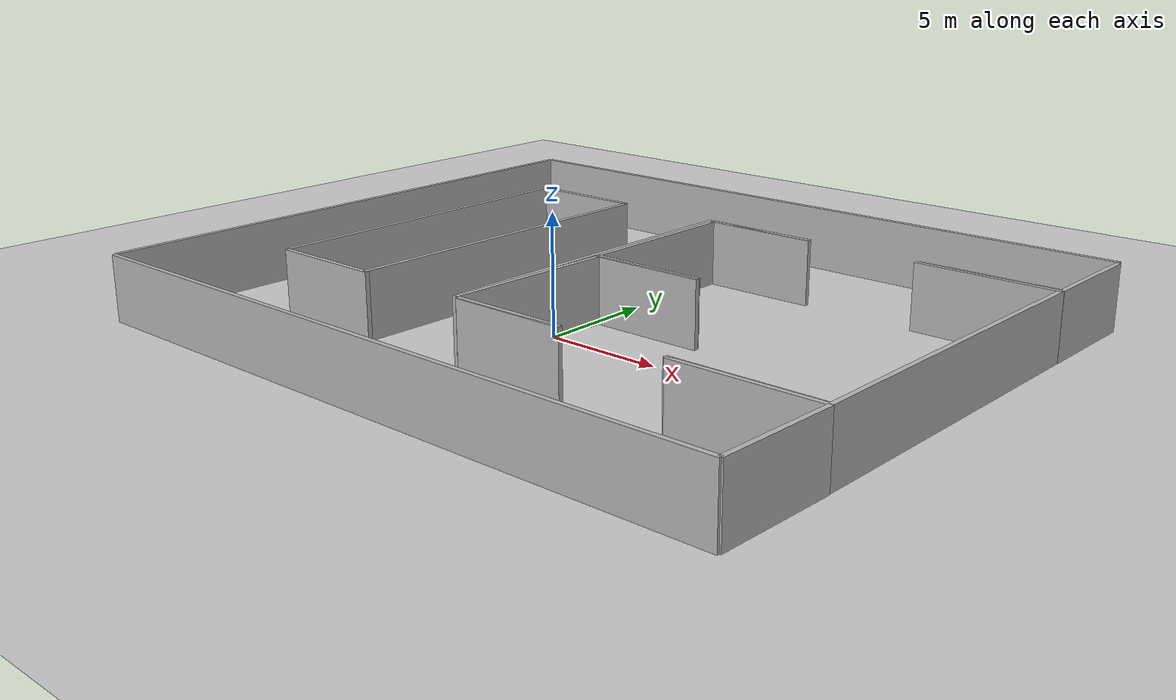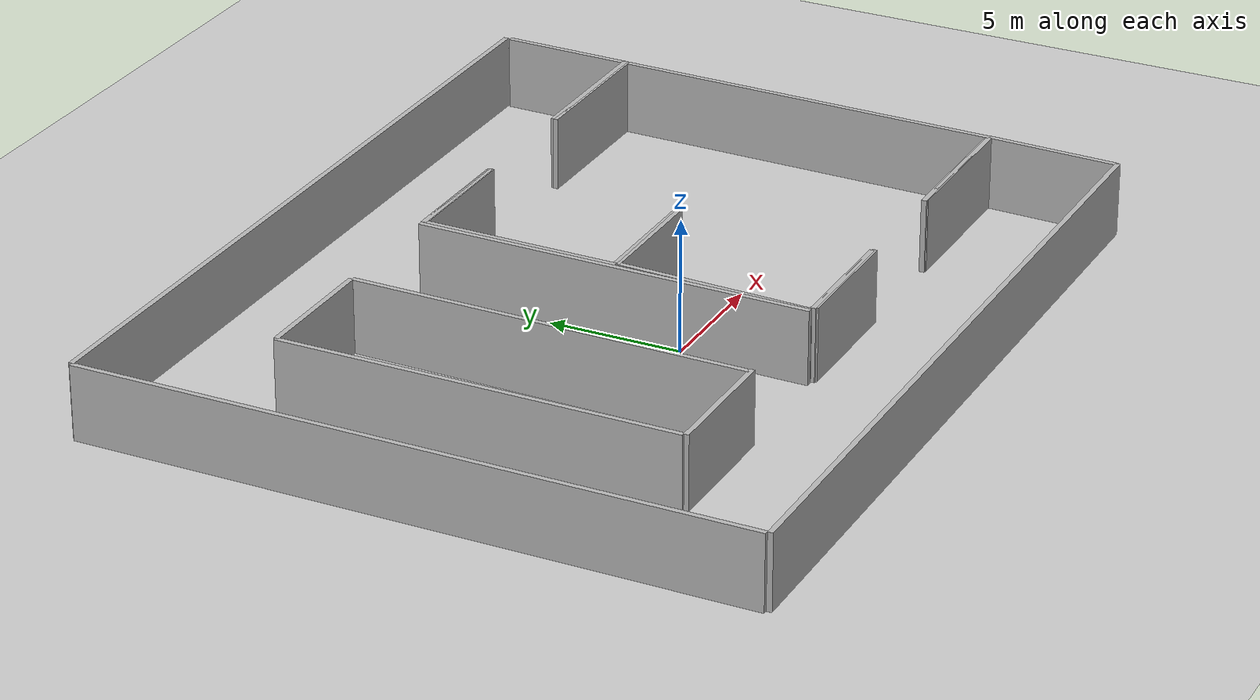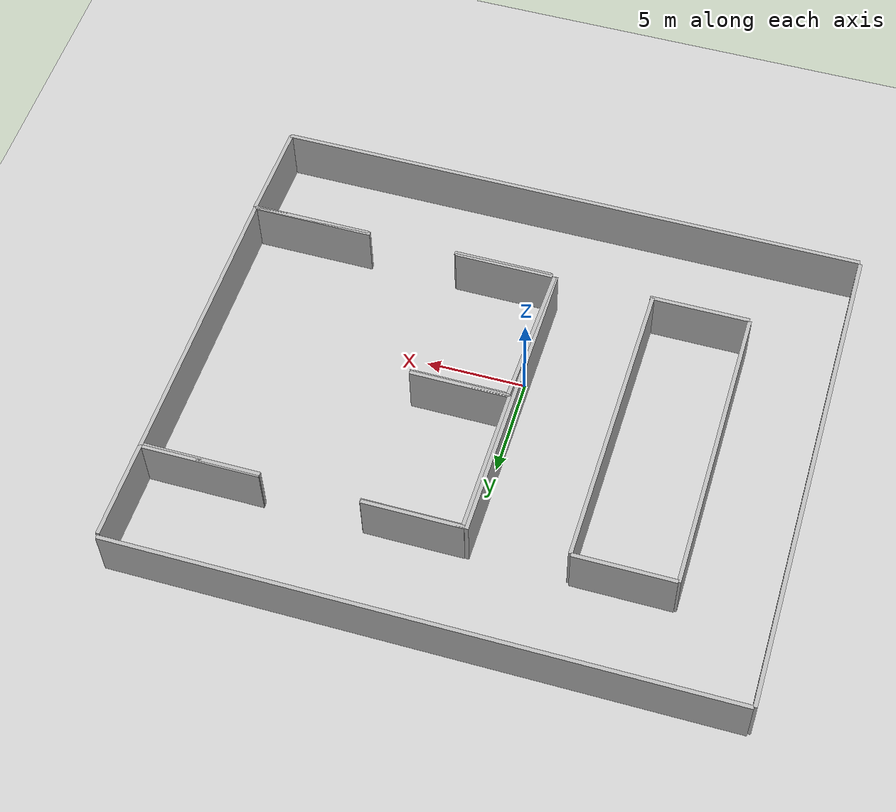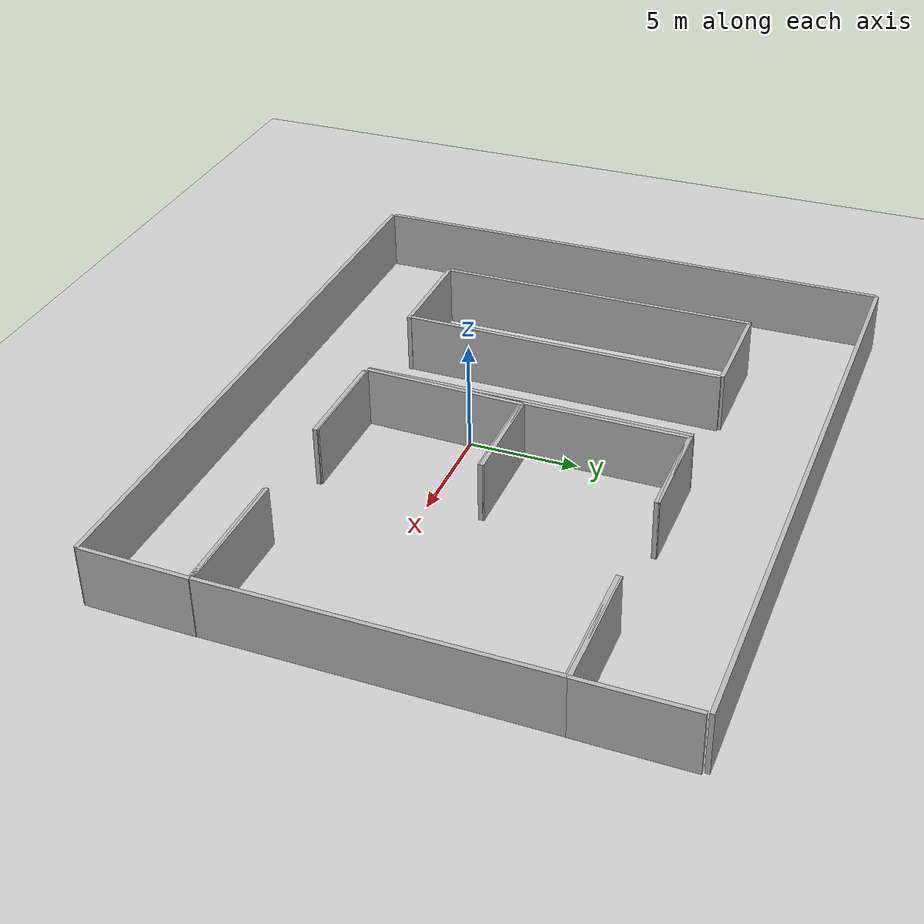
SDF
<sdf version="1.4">
 <world name="default">
  <light name="sun" type="directional">
   <pose>0 0 10 0 -0 0</pose>
   <diffuse>0.8 0.8 0.8 1</diffuse>
   <specular>0.2 0.2 0.2 1</specular>
   <attenuation>
    <range>1000</range>
    <constant>0.9</constant>
    <linear>0.01</linear>
    <quadratic>0.001</quadratic>
   </attenuation>
   <direction>-0.5 0.1 -0.9</direction>
  </light>
  <model name="ground_plane">
   <static>1</static>
   <link name="link">
    <collision name="collision">
     <geometry><plane><normal>0 0 1</normal><size>100 100</size></plane></geometry>
     <surface><friction><ode><mu>100</mu><mu2>50</mu2></ode></friction></surface>
    </collision>
    <visual name="visual">
     <cast_shadows>0</cast_shadows>
     <geometry><plane><normal>0 0 1</normal><size>100 100</size></plane></geometry>
     <material>
      <script><uri>file://media/materials/scripts/gazebo.material</uri><name>Gazebo/Grey</name></script>
     </material>
    </visual>
    <velocity_decay><linear>0</linear><angular>0</angular></velocity_decay>
   </link>
  </model>
  <physics type="ode">
   <max_step_size>0.001</max_step_size>
   <real_time_factor>1</real_time_factor>
   <real_time_update_rate>1000</real_time_update_rate>
   <gravity>0 0 -9.8</gravity>
  </physics>
  <scene><ambient>0.4 0.4 0.4 1</ambient><background>0.7 0.7 0.7 1</background><shadows>1</shadows></scene>
  <spherical_coordinates>
   <surface_model>EARTH_WGS84</surface_model>
   <latitude_deg>0</latitude_deg>
   <longitude_deg>0</longitude_deg>
   <elevation>0</elevation>
   <heading_deg>0</heading_deg>
  </spherical_coordinates>
  <model name="lab">
   <static>1</static>
   <link name="link">
    <pose>0 0 1.4 0 -0 0</pose>
    <collision name="collision"><geometry><box><size>30 0.2 2.8</size></box></geometry></collision>
    <visual name="visual">
     <cast_shadows>0</cast_shadows>
     <geometry><box><size>30 0.2 2.8</size></box></geometry>
     <material>
      <script>
       <uri>model://lab/materials/scripts</uri>
       <uri>model://lab/materials/textures</uri>
       <name>vrc/lab_wall1</name>
      </script>
     </material>
    </visual>
    <velocity_decay><linear>0</linear><angular>0</angular></velocity_decay>
   </link>
   <pose>0.475264 -10 0 0 -0 0</pose>
  </model>
  <model name="lab_0">
   <static>1</static>
   <link name="link">
    <pose>0 0 1.4 0 -0 0</pose>
    <collision name="collision"><geometry><box><size>5 0.2 2.8</size></box></geometry></collision>
    <visual name="visual">
     <cast_shadows>0</cast_shadows>
     <geometry><box><size>5 0.2 2.8</size></box></geometry>
     <material>
      <script>
       <uri>model://lab/materials/scripts</uri>
       <uri>model://lab/materials/textures</uri>
       <name>vrc/lab_wall2</name>
      </script>
     </material>
    </visual>
    <velocity_decay><linear>0</linear><angular>0</angular></velocity_decay>
   </link>
   <pose>15.5383 -7.50469 0 0 -0 1.53305</pose>
  </model>
  <model name="lab_1">
   <static>1</static>
   <link name="link">
    <pose>0 0 1.4 0 -0 0</pose>
    <collision name="collision"><geometry><box><size>15 0.2 2.8</size></box></geometry></collision>
    <visual name="visual">
     <cast_shadows>0</cast_shadows>
     <geometry><box><size>15 0.2 2.8</size></box></geometry>
     <material>
      <script>
       <uri>model://lab/materials/scripts</uri>
       <uri>model://lab/materials/textures</uri>
       <name>vrc/lab_wall3</name>
      </script>
     </material>
    </visual>
    <velocity_decay><linear>0</linear><angular>0</angular></velocity_decay>
   </link>
   <pose>15.7626 2.51113 0 0 -0 1.55062</pose>
  </model>
  <model name="lab_2">
   <static>1</static>
   <link name="link">
    <pose>0 0 1.4 0 -0 0</pose>
    <collision name="collision"><geometry><box><size>5 0.2 2.8</size></box></geometry></collision>
    <visual name="visual">
     <cast_shadows>0</cast_shadows>
     <geometry><box><size>5 0.2 2.8</size></box></geometry>
     <material>
      <script>
       <uri>model://lab/materials/scripts</uri>
       <uri>model://lab/materials/textures</uri>
       <name>vrc/lab_wall4</name>
      </script>
     </material>
    </visual>
    <velocity_decay><linear>0</linear><angular>0</angular></velocity_decay>
   </link>
   <pose>15.9764 12.4537 0 0 -0 1.54953</pose>
  </model>
  <model name="lab_4">
   <static>1</static>
   <link name="link">
    <pose>0 0 1.4 0 -0 0</pose>
    <collision name="collision"><geometry><box><size>25 0.2 2.8</size></box></geometry></collision>
    <visual name="visual">
     <cast_shadows>0</cast_shadows>
     <geometry><box><size>25 0.2 2.8</size></box></geometry>
     <material>
      <script>
       <uri>model://lab/materials/scripts</uri>
       <uri>model://lab/materials/textures</uri>
       <name>vrc/lab_wall7</name>
      </script>
     </material>
    </visual>
    <velocity_decay><linear>0</linear><angular>0</angular></velocity_decay>
   </link>
   <pose>-14.5466 2.602 0 0 0 -1.57249</pose>
  </model>
  <model name="lab_5">
   <static>1</static>
   <link name="link">
    <pose>0 0 1.4 0 -0 0</pose>
    <collision name="collision"><geometry><box><size>30.5 0.2 2.8</size></box></geometry></collision>
    <visual name="visual">
     <cast_shadows>0</cast_shadows>
     <geometry><box><size>30.5 0.2 2.8</size></box></geometry>
     <material>
      <script>
       <uri>model://lab/materials/scripts</uri>
       <uri>model://lab/materials/textures</uri>
       <name>vrc/lab_wall5</name>
      </script>
     </material>
    </visual>
    <velocity_decay><linear>0</linear><angular>0</angular></velocity_decay>
   </link>
   <pose>0.772363 15.1187 0 0 -0 0</pose>
  </model>
  <model name="lab_6">
   <static>1</static>
   <link name="link">
    <pose>0 0 1.4 0 -0 0</pose>
    <collision name="collision"><geometry><box><size>15 0.2 2.8</size></box></geometry></collision>
    <visual name="visual">
     <cast_shadows>0</cast_shadows>
     <geometry><box><size>15 0.2 2.8</size></box></geometry>
     <material>
      <script>
       <uri>model://lab/materials/scripts</uri>
       <uri>model://lab/materials/textures</uri>
       <name>vrc/lab_wall6</name>
      </script>
     </material>
    </visual>
    <velocity_decay><linear>0</linear><angular>0</angular></velocity_decay>
   </link>
   <pose>-9.98991 2.57591 0 0 0 -1.57286</pose>
  </model>
  <model name="lab_7">
   <static>1</static>
   <link name="link">
    <pose>0 0 1.4 0 -0 0</pose>
    <collision name="collision"><geometry><box><size>15 0.2 2.8</size></box></geometry></collision>
    <visual name="visual">
     <cast_shadows>0</cast_shadows>
     <geometry><box><size>15 0.2 2.8</size></box></geometry>
     <material>
      <script>
       <uri>model://lab/materials/scripts</uri>
       <uri>model://lab/materials/textures</uri>
       <name>vrc/lab_wall9</name>
      </script>
     </material>
    </visual>
    <velocity_decay><linear>0</linear><angular>0</angular></velocity_decay>
   </link>
   <pose>-5.02062 2.49493 0 0 -0 1.55749</pose>
  </model>
  <model name="lab_8">
   <static>1</static>
   <link name="link">
    <pose>0 0 1.4 0 -0 0</pose>
    <collision name="collision"><geometry><box><size>5 0.2 2.8</size></box></geometry></collision>
    <visual name="visual">
     <cast_shadows>0</cast_shadows>
     <geometry><box><size>5 0.2 2.8</size></box></geometry>
     <material>
      <script>
       <uri>model://lab/materials/scripts</uri>
       <uri>model://lab/materials/textures</uri>
       <name>vrc/lab_wall8</name>
      </script>
     </material>
    </visual>
    <velocity_decay><linear>0</linear><angular>0</angular></velocity_decay>
   </link>
   <pose>-7.49222 -5 0 0 -0 0</pose>
  </model>
  <model name="lab_9">
   <static>1</static>
   <link name="link">
    <pose>0 0 1.4 0 -0 0</pose>
    <collision name="collision"><geometry><box><size>5 0.2 2.8</size></box></geometry></collision>
    <visual name="visual">
     <cast_shadows>0</cast_shadows>
     <geometry><box><size>5 0.2 2.8</size></box></geometry>
     <material>
      <script>
       <uri>model://lab/materials/scripts</uri>
       <uri>model://lab/materials/textures</uri>
       <name>vrc/lab_wall10</name>
      </script>
     </material>
    </visual>
    <velocity_decay><linear>0</linear><angular>0</angular></velocity_decay>
   </link>
   <pose>-7.44832 10.0322 0 0 -0 0</pose>
  </model>
  <model name="lab_10">
   <static>1</static>
   <link name="link">
    <pose>0 0 1.4 0 -0 0</pose>
    <collision name="collision"><geometry><box><size>5 0.2 2.8</size></box></geometry></collision>
    <visual name="visual">
     <cast_shadows>0</cast_shadows>
     <geometry><box><size>5 0.2 2.8</size></box></geometry>
     <material>
      <script>
       <uri>model://lab/materials/scripts</uri>
       <uri>model://lab/materials/textures</uri>
       <name>vrc/lab_wall13</name>
      </script>
     </material>
    </visual>
    <velocity_decay><linear>0</linear><angular>0</angular></velocity_decay>
   </link>
   <pose>2.54969 -5 0 0 -0 0</pose>
  </model>
  <model name="lab_11">
   <static>1</static>
   <link name="link">
    <pose>0 0 1.4 0 -0 0</pose>
    <collision name="collision"><geometry><box><size>5 0.2 2.8</size></box></geometry></collision>
    <visual name="visual">
     <cast_shadows>0</cast_shadows>
     <geometry><box><size>5 0.2 2.8</size></box></geometry>
     <material>
      <script>
       <uri>model://lab/materials/scripts</uri>
       <uri>model://lab/materials/textures</uri>
       <name>vrc/lab_wall14</name>
      </script>
     </material>
    </visual>
    <velocity_decay><linear>0</linear><angular>0</angular></velocity_decay>
   </link>
   <pose>2.47425 -4.9383 0 0 -0 0</pose>
  </model>
  <model name="lab_12">
   <static>1</static>
   <link name="link">
    <pose>0 0 1.4 0 -0 0</pose>
    <collision name="collision"><geometry><box><size>5 0.2 2.8</size></box></geometry></collision>
    <visual name="visual">
     <cast_shadows>0</cast_shadows>
     <geometry><box><size>5 0.2 2.8</size></box></geometry>
     <material>
      <script>
       <uri>model://lab/materials/scripts</uri>
       <uri>model://lab/materials/textures</uri>
       <name>vrc/lab_wall19</name>
      </script>
     </material>
    </visual>
    <velocity_decay><linear>0</linear><angular>0</angular></velocity_decay>
   </link>
   <pose>2.56969 10 0 0 -0 0</pose>
  </model>
  <model name="lab_13">
   <static>1</static>
   <link name="link">
    <pose>0 0 1.4 0 -0 0</pose>
    <collision name="collision"><geometry><box><size>5 0.2 2.8</size></box></geometry></collision>
    <visual name="visual">
     <cast_shadows>0</cast_shadows>
     <geometry><box><size>5 0.2 2.8</size></box></geometry>
     <material>
      <script>
       <uri>model://lab/materials/scripts</uri>
       <uri>model://lab/materials/textures</uri>
       <name>vrc/lab_wall20</name>
      </script>
     </material>
    </visual>
    <velocity_decay><linear>0</linear><angular>0</angular></velocity_decay>
   </link>
   <pose>2.59701 9.96028 0 0 -0 0</pose>
  </model>
  <model name="lab_14">
   <static>1</static>
   <link name="link">
    <pose>0 0 1.4 0 -0 0</pose>
    <collision name="collision"><geometry><box><size>5 0.2 2.8</size></box></geometry></collision>
    <visual name="visual">
     <cast_shadows>0</cast_shadows>
     <geometry><box><size>5 0.2 2.8</size></box></geometry>
     <material>
      <script>
       <uri>model://lab/materials/scripts</uri>
       <uri>model://lab/materials/textures</uri>
       <name>vrc/lab_wall21</name>
      </script>
     </material>
    </visual>
    <velocity_decay><linear>0</linear><angular>0</angular></velocity_decay>
   </link>
   <pose>2.55112 2.51969 0 0 -0 0</pose>
  </model>
  <model name="lab_15">
   <static>1</static>
   <link name="link">
    <pose>0 0 1.4 0 -0 0</pose>
    <collision name="collision"><geometry><box><size>5 0.2 2.8</size></box></geometry></collision>
    <visual name="visual">
     <cast_shadows>0</cast_shadows>
     <geometry><box><size>5 0.2 2.8</size></box></geometry>
     <material>
      <script>
       <uri>model://lab/materials/scripts</uri>
       <uri>model://lab/materials/textures</uri>
       <name>vrc/lab_wall22</name>
      </script>
     </material>
    </visual>
    <velocity_decay><linear>0</linear><angular>0</angular></velocity_decay>
   </link>
   <pose>2.57082 2.45446 0 0 -0 0</pose>
  </model>
  <model name="lab_16">
   <static>1</static>
   <link name="link">
    <pose>0 0 1.4 0 -0 0</pose>
    <collision name="collision"><geometry><box><size>7.5 0.2 2.8</size></box></geometry></collision>
    <visual name="visual">
     <cast_shadows>0</cast_shadows>
     <geometry><box><size>7.5 0.2 2.8</size></box></geometry>
     <material>
      <script>
       <uri>model://lab/materials/scripts</uri>
       <uri>model://lab/materials/textures</uri>
       <name>vrc/lab_wall12</name>
      </script>
     </material>
    </visual>
    <velocity_decay><linear>0</linear><angular>0</angular></velocity_decay>
   </link>
   <pose>0.008074 -1.15163 0 0 0 -1.61099</pose>
  </model>
  <model name="lab_17">
   <static>1</static>
   <link name="link">
    <pose>0 0 1.4 0 -0 0</pose>
    <collision name="collision"><geometry><box><size>7.5 0.2 2.8</size></box></geometry></collision>
    <visual name="visual">
     <cast_shadows>0</cast_shadows>
     <geometry><box><size>7.5 0.2 2.8</size></box></geometry>
     <material>
      <script>
       <uri>model://lab/materials/scripts</uri>
       <uri>model://lab/materials/textures</uri>
       <name>vrc/lab_wall23</name>
      </script>
     </material>
    </visual>
    <velocity_decay><linear>0</linear><angular>0</angular></velocity_decay>
   </link>
   <pose>0.103097 6.25684 0 0 0 -1.58428</pose>
  </model>
  <model name="lab_18">
   <static>1</static>
   <link name="link">
    <pose>0 0 1.4 0 -0 0</pose>
    <collision name="collision"><geometry><box><size>15 0.2 2.8</size></box></geometry></collision>
    <visual name="visual">
     <cast_shadows>0</cast_shadows>
     <geometry><box><size>15 0.2 2.8</size></box></geometry>
     <material>
      <script>
       <uri>model://lab/materials/scripts</uri>
       <uri>model://lab/materials/textures</uri>
       <name>vrc/lab_wall11</name>
      </script>
     </material>
    </visual>
    <velocity_decay><linear>0</linear><angular>0</angular></velocity_decay>
   </link>
   <pose>-0.126916 2.57856 0 0 0 -1.58327</pose>
  </model>
  <model name="lab_19">
   <static>1</static>
   <link name="link">
    <pose>0 0 1.4 0 -0 0</pose>
    <collision name="collision"><geometry><box><size>6 0.2 2.8</size></box></geometry></collision>
    <visual name="visual">
     <cast_shadows>0</cast_shadows>
     <geometry><box><size>6 0.2 2.8</size></box></geometry>
     <material>
      <script>
       <uri>model://lab/materials/scripts</uri>
       <uri>model://lab/materials/textures</uri>
       <name>vrc/lab_wall15</name>
      </script>
     </material>
    </visual>
    <velocity_decay><linear>0</linear><angular>0</angular></velocity_decay>
   </link>
   <pose>12.5798 -5 0 0 -0 0</pose>
  </model>
  <model name="lab_20">
   <static>1</static>
   <link name="link">
    <pose>0 0 1.4 0 -0 0</pose>
    <collision name="collision"><geometry><box><size>6 0.2 2.8</size></box></geometry></collision>
    <visual name="visual">
     <cast_shadows>0</cast_shadows>
     <geometry><box><size>6 0.2 2.8</size></box></geometry>
     <material>
      <script>
       <uri>model://lab/materials/scripts</uri>
       <uri>model://lab/materials/textures</uri>
       <name>vrc/lab_wall16</name>
      </script>
     </material>
    </visual>
    <velocity_decay><linear>0</linear><angular>0</angular></velocity_decay>
   </link>
   <pose>12.496 -4.9604 0 0 -0 0</pose>
  </model>
  <model name="lab_21">
   <static>1</static>
   <link name="link">
    <pose>0 0 1.4 0 -0 0</pose>
    <collision name="collision"><geometry><box><size>6 0.2 2.8</size></box></geometry></collision>
    <visual name="visual">
     <cast_shadows>0</cast_shadows>
     <geometry><box><size>6 0.2 2.8</size></box></geometry>
     <material>
      <script>
       <uri>model://lab/materials/scripts</uri>
       <uri>model://lab/materials/textures</uri>
       <name>vrc/lab_wall17</name>
      </script>
     </material>
    </visual>
    <velocity_decay><linear>0</linear><angular>0</angular></velocity_decay>
   </link>
   <pose>13 10 0 0 -0 0</pose>
  </model>
  <model name="lab_22">
   <static>1</static>
   <link name="link">
    <pose>0 0 1.4 0 -0 0</pose>
    <collision name="collision"><geometry><box><size>6 0.2 2.8</size></box></geometry></collision>
    <visual name="visual">
     <cast_shadows>0</cast_shadows>
     <geometry><box><size>6 0.2 2.8</size></box></geometry>
     <material>
      <script>
       <uri>model://lab/materials/scripts</uri>
       <uri>model://lab/materials/textures</uri>
       <name>vrc/lab_wall18</name>
      </script>
     </material>
    </visual>
    <velocity_decay><linear>0</linear><angular>0</angular></velocity_decay>
   </link>
   <pose>12.996 9.92035 0 0 -0 0</pose>
  </model>
 </world>
</sdf>
